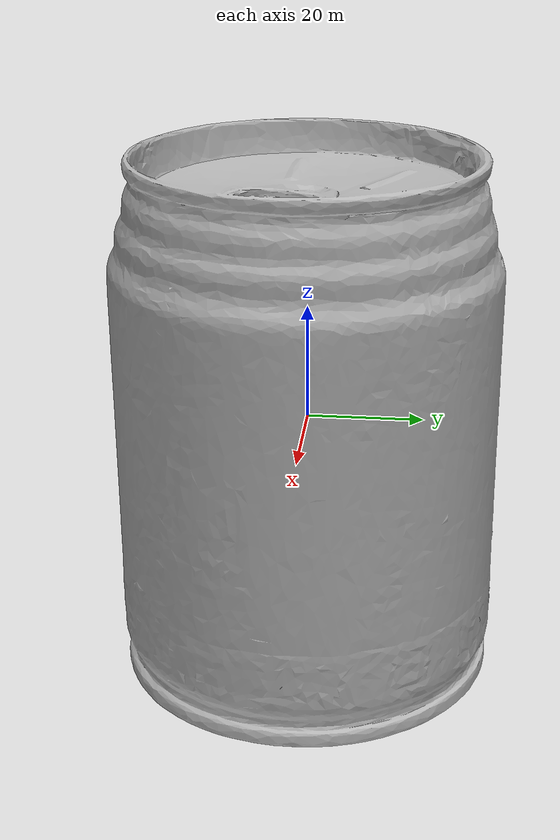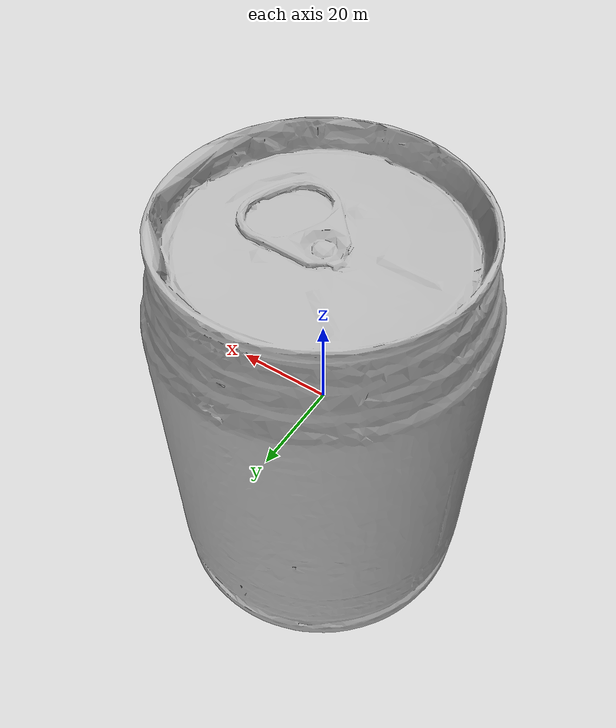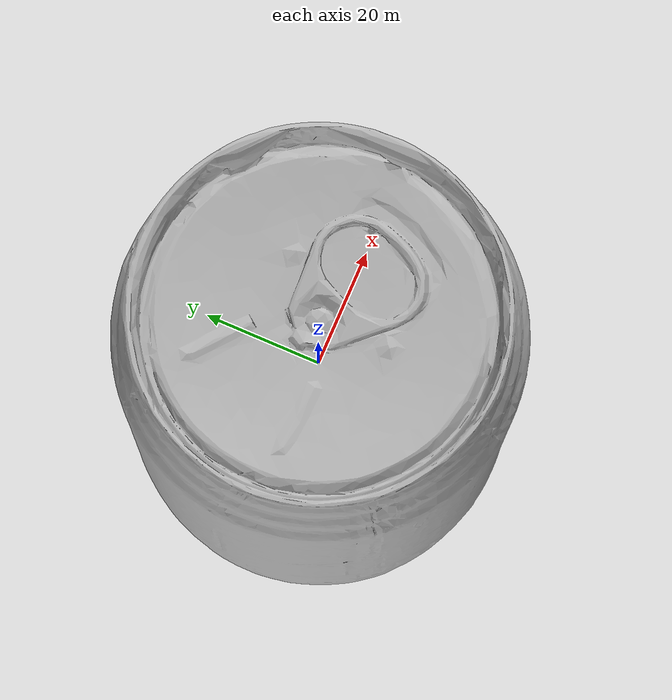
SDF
<sdf version="1.4">
 <world name="default">
  <light name="light1" type="point">
   <pose>0 0 1 0 0 0</pose>
   <diffuse>3 3 3 1</diffuse>
   <specular>3 3 3 1</specular>
  </light>
  <light name="light2" type="point">
   <pose>0 0.5 2 0 0 0</pose>
   <diffuse>1 1 1 1</diffuse>
   <specular>1 1 1 1</specular>
  </light>
  <light name="light3" type="point">
   <pose>0 0.5 2 0 0 0</pose>
   <diffuse>3 3 3 1</diffuse>
   <specular>3 3 3 1</specular>
  </light>
  <scene><ambient>0.7 0.7 0.7</ambient></scene>
  <model name="box2">
   <link name="link_box2">
    <collision name="default">
     <geometry>
      <mesh><uri>model://wooden_puzzle2/collision_meshes/collision.obj</uri><scale>1.0 1.0 1.0</scale></mesh>
     </geometry>
     <surface>
      <friction><ode><mu>0.5</mu><mu2>0.5</mu2></ode></friction>
      <contact><ode><max_vel>0</max_vel><min_depth>0.0001</min_depth><kp>1e8</kp></ode></contact>
     </surface>
    </collision>
    <visual name="default">
     <geometry>
      <mesh><uri>model://wooden_puzzle2/visual_meshes/visual.dae</uri><scale>1.0 1.0 1.0</scale></mesh>
     </geometry>
    </visual>
    <inertial>
     <mass>0.03464552015066147</mass>
     <pose>2.7402536943554878e-05 4.997663199901581e-05 6.587122334167361e-05 -0.1920274284601778 0.6112817660648215 -0.6338676817937987</pose>
     <inertia>
      <ixx>6.440233e-06</ixx>
      <iyy>6.6177017e-06</iyy>
      <izz>6.52356e-06</izz>
      <ixy>0</ixy>
      <ixz>0</ixz>
      <iyz>0</iyz>
     </inertia>
    </inertial>
   </link>
   <pose>0.2629668712615967 -0.025484483689069748 0.01691773720085621 0.020847601741800854 0.000722144451231114 -0.07128814440198174</pose>
  </model>
  <model name="box3">
   <link name="link_box3">
    <collision name="default">
     <geometry>
      <mesh><uri>model://wooden_puzzle1/collision_meshes/collision.obj</uri><scale>1.0 1.0 1.0</scale></mesh>
     </geometry>
     <surface>
      <friction><ode><mu>0.5</mu><mu2>0.5</mu2></ode></friction>
      <contact><ode><max_vel>0</max_vel><min_depth>0.0001</min_depth><kp>1e8</kp></ode></contact>
     </surface>
    </collision>
    <visual name="default">
     <geometry>
      <mesh><uri>model://wooden_puzzle1/visual_meshes/visual.dae</uri><scale>1.0 1.0 1.0</scale></mesh>
     </geometry>
    </visual>
    <inertial>
     <mass>0.03424873203039169</mass>
     <pose>-0.0001735068071866408 7.97226166469045e-05 -9.191554272547364e-05 -0.07784599296854997 -0.2636133645981781 -0.5528677830585703</pose>
     <inertia>
      <ixx>6.4618e-06</ixx>
      <iyy>6.3374077e-06</iyy>
      <izz>6.413012e-06</izz>
      <ixy>0</ixy>
      <ixz>0</ixz>
      <iyz>0</iyz>
     </inertia>
    </inertial>
   </link>
   <pose>0.1909617930650711 -0.0011564349988475442 0.016801998019218445 0.010515097473703222 -0.00945807328555676 -2.8922853810982776</pose>
  </model>
  <model name="can1">
   <link name="link_can1">
    <collision name="default">
     <geometry>
      <mesh><uri>model://pepsi/collision_meshes/collision.obj</uri><scale>1.0 1.0 1.0</scale></mesh>
     </geometry>
     <surface>
      <friction><ode><mu>0.5</mu><mu2>0.5</mu2></ode></friction>
      <contact><ode><max_vel>0</max_vel><min_depth>0.0001</min_depth><kp>1e8</kp></ode></contact>
     </surface>
    </collision>
    <visual name="default">
     <geometry><mesh><uri>model://pepsi/visual_meshes/visual.dae</uri><scale>1.0 1.0 1.0</scale></mesh></geometry>
    </visual>
    <inertial>
     <mass>0.3250696361064911</mass>
     <pose>-7.5590331107378e-05 2.99312814604491e-05 -0.0003384356386959553 -0.0010678660158137958 -0.0021735266966629516 0.5674177426725915</pose>
     <inertia>
      <ixx>0.0006476009</ixx>
      <iyy>0.0006471292</iyy>
      <izz>0.00013783273</izz>
      <ixy>0</ixy>
      <ixz>0</ixz>
      <iyz>0</iyz>
     </inertia>
    </inertial>
   </link>
   <pose>0.043002575635910034 -0.10397258400917053 0.07449636608362198 -1.8939071635316666e-05 2.074582624347927e-06 -3.0440977154847415</pose>
  </model>
  <model name="can2">
   <link name="link_can2">
    <collision name="default">
     <geometry>
      <mesh><uri>model://redbull/collision_meshes/collision.obj</uri><scale>1.0 1.0 1.0</scale></mesh>
     </geometry>
     <surface>
      <friction><ode><mu>0.5</mu><mu2>0.5</mu2></ode></friction>
      <contact><ode><max_vel>0</max_vel><min_depth>0.0001</min_depth><kp>1e8</kp></ode></contact>
     </surface>
    </collision>
    <visual name="default">
     <geometry>
      <mesh><uri>model://redbull/visual_meshes/visual.dae</uri><scale>1.0 1.0 1.0</scale></mesh>
     </geometry>
    </visual>
    <inertial>
     <mass>0.28235653042793274</mass>
     <pose>-2.2127058400656097e-05 -0.00012659600179176778 -0.0006860987632535398 0.0011377565977294822 -0.010800863454111471 0.5858141898730843</pose>
     <inertia>
      <ixx>0.0002654759</ixx>
      <iyy>0.0002657</iyy>
      <izz>0.00015754026</izz>
      <ixy>0</ixy>
      <ixz>0</ixz>
      <iyz>0</iyz>
     </inertia>
    </inertial>
   </link>
   <pose>0.12233039736747742 0.022606099024415016 0.04638561233878136 -0.010488904963497405 0.007260957668952747 1.5889002465144986</pose>
  </model>
  <physics type="ode">
   <max_contacts>50</max_contacts>
   <ode>
    <solver><type>quick</type><iters>75</iters></solver>
    <constraints>
     <contact_max_correcting_vel>0</contact_max_correcting_vel>
     <contact_surface_layer>0</contact_surface_layer>
    </constraints>
   </ode>
  </physics>
 </world>
</sdf>
